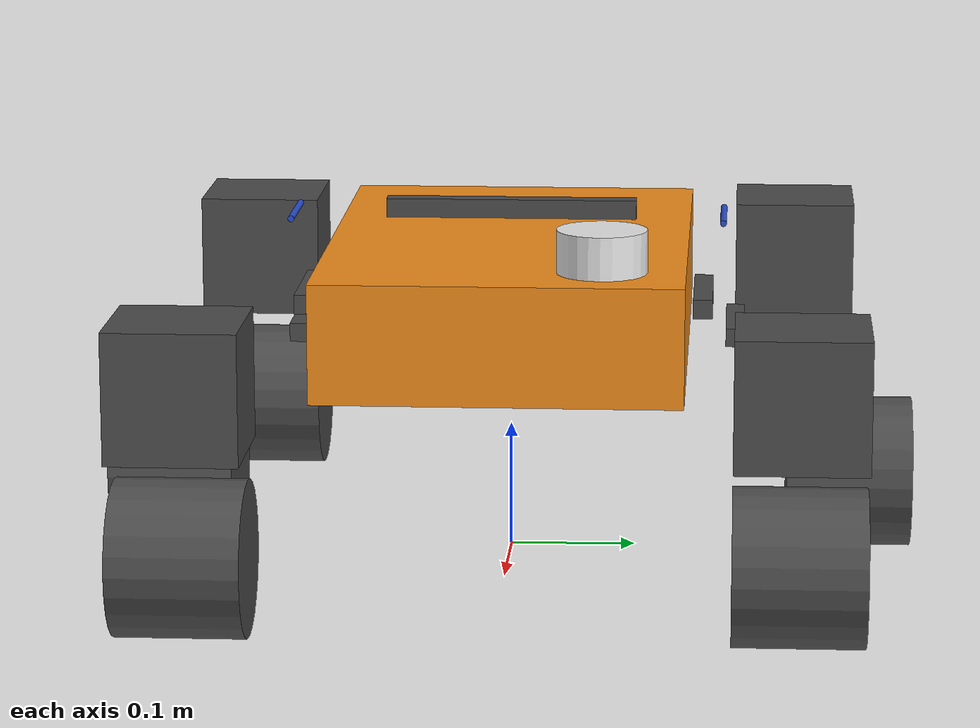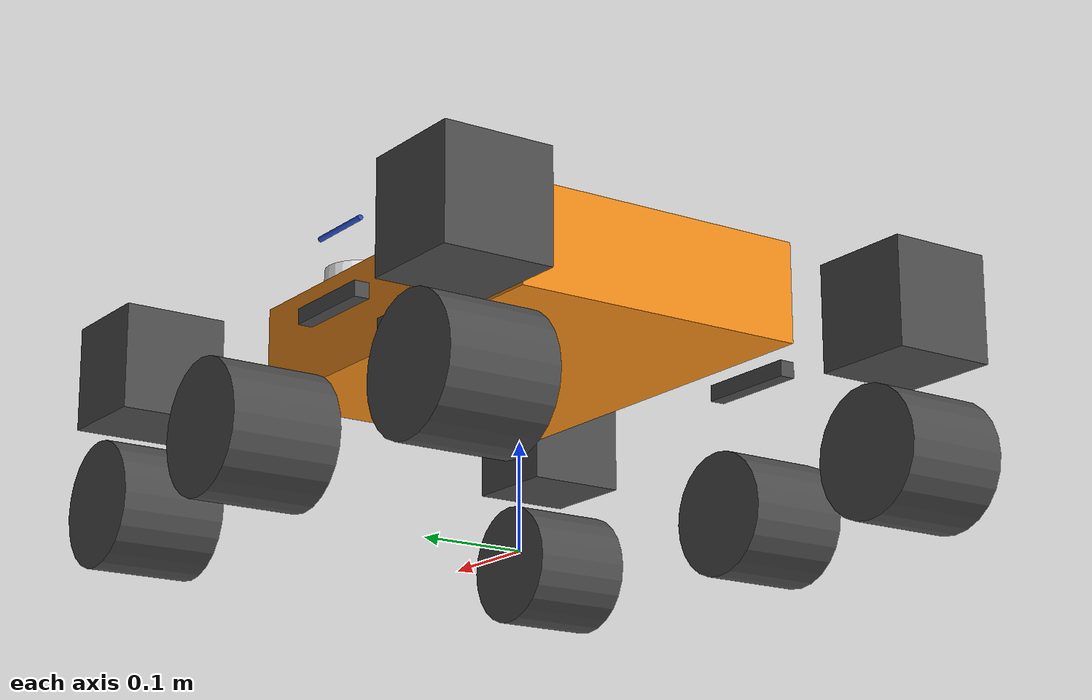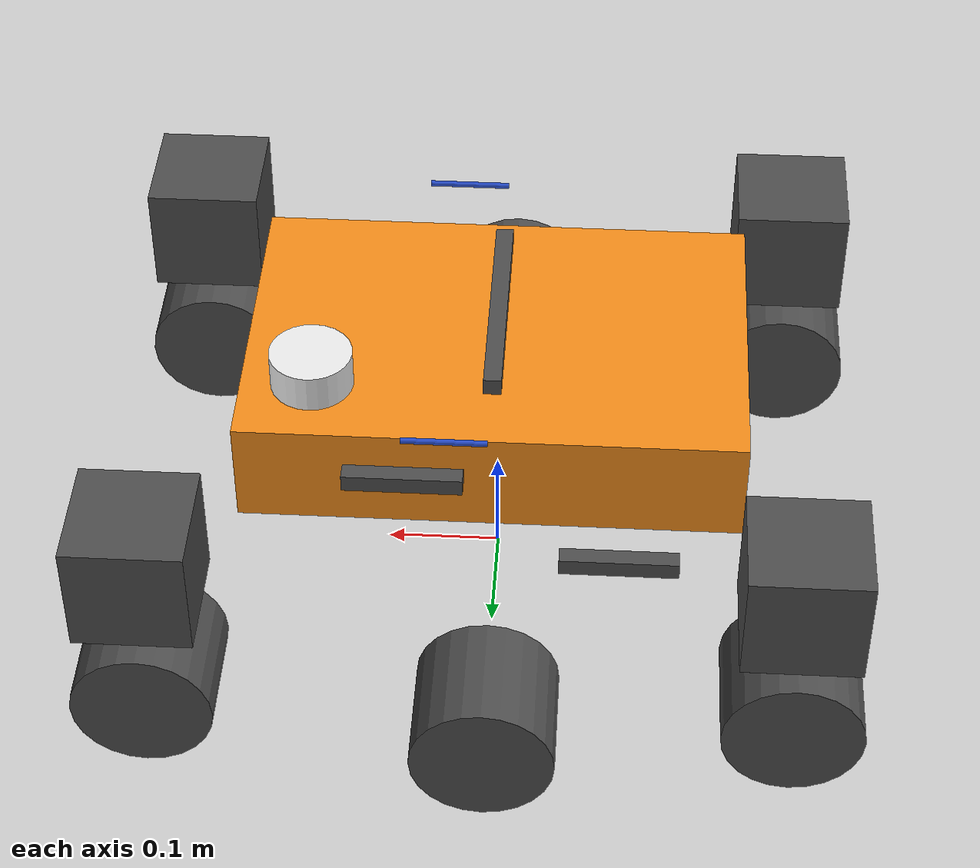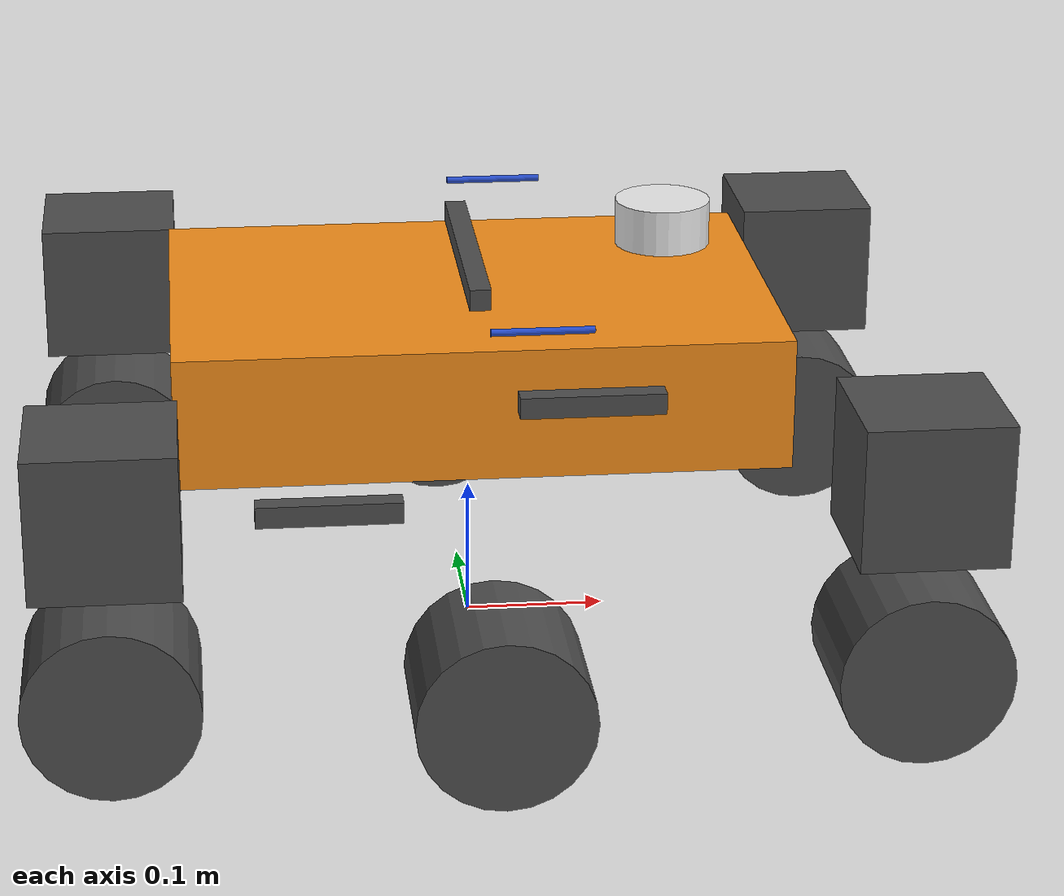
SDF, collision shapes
<?xml version='1.0'?>
<sdf version='1.6'>
<model name='sawppy_ardupilot'>
    <pose>0 0 0.21 0 0 0</pose>

    <include>
        <pose>0 0 0 0 0 0</pose>
        <uri>model://sawppy</uri>
    </include>

    <plugin name="ardupilot_plugin" filename="libArduPilotPlugin.so">
        <!-- Port settings -->
        <fdm_addr>127.0.0.1</fdm_addr>
        <fdm_port_in>9002</fdm_port_in>
        <connectionTimeoutMaxCount>5</connectionTimeoutMaxCount>

        <modelXYZToAirplaneXForwardZDown>0 0 0 3.141593 0 0</modelXYZToAirplaneXForwardZDown>
        <gazeboXYZToNED>0 0 0 3.141593 0 0</gazeboXYZToNED>

        <!-- Sensors -->
        <imuName>sawppy_ardupilot::imu_link::imu_sensor</imuName>

        <!-- Control / channels -->

        <!-- Wheel servos -->

        <!--
            SERVO1_FUNCTION 94 (Script 1)
            SERVO1_MIN 1000
            SERVO1_MAX 2000
        -->
        <control channel="0">
            <jointName>sawppy_ardupilot::sawppy::front_left_wheel_joint</jointName>
            <useForce>1</useForce>
            <multiplier>12.5</multiplier>
            <offset>-0.5</offset>
            <type>VELOCITY</type>
            <p_gain>1</p_gain>
            <i_gain>0</i_gain>
            <d_gain>0</d_gain>
            <i_max>1</i_max>
            <i_min>0</i_min>
            <cmd_max>1.25</cmd_max>
            <cmd_min>-1.25</cmd_min>
        </control>

        <!--
            SERVO2_FUNCTION 95 (Script 2)
            SERVO2_MIN 1000
            SERVO2_MAX 2000
        -->
        <control channel="1">
            <jointName>sawppy_ardupilot::sawppy::front_right_wheel_joint</jointName>
            <useForce>1</useForce>
            <multiplier>12.5</multiplier>
            <offset>-0.5</offset>
            <type>VELOCITY</type>
            <p_gain>1</p_gain>
            <i_gain>0</i_gain>
            <d_gain>0</d_gain>
            <i_max>1</i_max>
            <i_min>0</i_min>
            <cmd_max>1.25</cmd_max>
            <cmd_min>-1.25</cmd_min>
        </control>

        <!--
            SERVO3_FUNCTION 96 (Script 3)
            SERVO3_MIN 1000
            SERVO3_MAX 2000
        -->
        <control channel="2">
            <jointName>sawppy_ardupilot::sawppy::mid_left_wheel_joint</jointName>
            <useForce>1</useForce>
            <multiplier>12.5</multiplier>
            <offset>-0.5</offset>
            <type>VELOCITY</type>
            <p_gain>1</p_gain>
            <i_gain>0</i_gain>
            <d_gain>0</d_gain>
            <i_max>1</i_max>
            <i_min>0</i_min>
            <cmd_max>1.25</cmd_max>
            <cmd_min>-1.25</cmd_min>
        </control>

        <!--
            SERVO4_FUNCTION 97 (Script 4)
            SERVO4_MIN 1000
            SERVO4_MAX 2000
        -->
        <control channel="3">
            <jointName>sawppy_ardupilot::sawppy::mid_right_wheel_joint</jointName>
            <useForce>1</useForce>
            <multiplier>12.5</multiplier>
            <offset>-0.5</offset>
            <type>VELOCITY</type>
            <p_gain>1</p_gain>
            <i_gain>0</i_gain>
            <d_gain>0</d_gain>
            <i_max>1</i_max>
            <i_min>0</i_min>
            <cmd_max>1.25</cmd_max>
            <cmd_min>-1.25</cmd_min>
        </control>

        <!--
            SERVO5_FUNCTION 98 (Script 5)
            SERVO5_MIN 1000
            SERVO5_MAX 2000
        -->
        <control channel="4">
            <jointName>sawppy_ardupilot::sawppy::back_left_wheel_joint</jointName>
            <useForce>1</useForce>
            <multiplier>12.5</multiplier>
            <offset>-0.5</offset>
            <type>VELOCITY</type>
            <p_gain>1</p_gain>
            <i_gain>0</i_gain>
            <d_gain>0</d_gain>
            <i_max>1</i_max>
            <i_min>0</i_min>
            <cmd_max>1.25</cmd_max>
            <cmd_min>-1.25</cmd_min>
        </control>

        <!--
            SERVO6_FUNCTION 99 (Script 6)
            SERVO6_MIN 1000
            SERVO6_MAX 2000
        -->
        <control channel="5">
            <jointName>sawppy_ardupilot::sawppy::back_right_wheel_joint</jointName>
            <useForce>1</useForce>
            <multiplier>12.5</multiplier>
            <offset>-0.5</offset>
            <type>VELOCITY</type>
            <p_gain>1</p_gain>
            <i_gain>0</i_gain>
            <d_gain>0</d_gain>
            <i_max>1</i_max>
            <i_min>0</i_min>
            <cmd_max>1.25</cmd_max>
            <cmd_min>-1.25</cmd_min>
        </control>

        <!-- Steer servos -->

        <!--
            SERVO7_FUNCTION 100 (Script 7)
            SERVO7_MIN 1000
            SERVO7_MAX 2000
        -->
        <control channel="6">
            <jointName>sawppy_ardupilot::sawppy::front_left_steer_joint</jointName>
            <useForce>1</useForce>
            <multiplier>6.283185</multiplier>
            <offset>-0.5</offset>
            <type>POSITION</type>
            <p_gain>1</p_gain>
            <i_gain>0</i_gain>
            <d_gain>0</d_gain>
            <i_max>1</i_max>
            <i_min>0</i_min>
            <cmd_max>3.141593</cmd_max>
            <cmd_min>-3.141593</cmd_min>
        </control>

        <!--
            SERVO8_FUNCTION 101 (Script 8)
            SERVO8_MIN 1000
            SERVO8_MAX 2000
        -->
        <control channel="7">
            <jointName>sawppy_ardupilot::sawppy::front_right_steer_joint</jointName>
            <useForce>1</useForce>
            <multiplier>6.283185</multiplier>
            <offset>-0.5</offset>
            <type>POSITION</type>
            <p_gain>1</p_gain>
            <i_gain>0</i_gain>
            <d_gain>0</d_gain>
            <i_max>1</i_max>
            <i_min>0</i_min>
            <cmd_max>3.141593</cmd_max>
            <cmd_min>-3.141593</cmd_min>
        </control>

        <!--
            SERVO9_FUNCTION 102 (Script 9)
            SERVO9_MIN 1000
            SERVO9_MAX 2000
        -->
        <control channel="8">
            <jointName>sawppy_ardupilot::sawppy::back_left_steer_joint</jointName>
            <useForce>1</useForce>
            <multiplier>6.283185</multiplier>
            <offset>-0.5</offset>
            <type>POSITION</type>
            <p_gain>1</p_gain>
            <i_gain>0</i_gain>
            <d_gain>0</d_gain>
            <i_max>1</i_max>
            <i_min>0</i_min>
            <cmd_max>3.141593</cmd_max>
            <cmd_min>-3.141593</cmd_min>
        </control>

        <!--
            SERVO10_FUNCTION 103 (Script 10)
            SERVO10_MIN 1000
            SERVO10_MAX 2000
        -->
        <control channel="9">
            <jointName>sawppy_ardupilot::sawppy::back_right_steer_joint</jointName>
            <useForce>1</useForce>
            <multiplier>6.283185</multiplier>
            <offset>-0.5</offset>
            <type>POSITION</type>
            <p_gain>1</p_gain>
            <i_gain>0</i_gain>
            <d_gain>0</d_gain>
            <i_max>1</i_max>
            <i_min>0</i_min>
            <cmd_max>3.141593</cmd_max>
            <cmd_min>-3.141593</cmd_min>
        </control>

    </plugin>

    <!-- NOTE: cannot find the sensor on the sawppy model?? -->
    <link name='imu_link'>
        <inertial>
            <mass>0.01</mass>
            <inertia>
                <ixx>1.66667E-07</ixx>
                <ixy>0</ixy>
                <ixz>0</ixz>
                <iyy>1.66667E-07</iyy>
                <iyz>0</iyz>
                <izz>1.66667E-07</izz>
            </inertia>
        </inertial>
        <sensor name="imu_sensor" type="imu">
            <pose>0 0 0 3.141593 0 0</pose>
            <always_on>1</always_on>
            <update_rate>1000.0</update_rate>
        </sensor>
    </link>

    <joint name='imu_joint' type='revolute'>
        <child>imu_link</child>
        <parent>sawppy_ardupilot::sawppy::base_link</parent>
        <axis>
            <xyz>0 0 1</xyz>
            <limit>
                <lower>0</lower>
                <upper>0</upper>
            </limit>
        </axis>
    </joint>
</model>
</sdf>

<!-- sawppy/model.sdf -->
<sdf version='1.7'>
  <model name='sawppy'>
    <pose>0 0 0.21 0 0 0</pose>
    <link name='base_link'>
      <inertial>
        <pose>0 0 0 0 0 0</pose>
        <mass>1.01</mass>
        <inertia>
          <ixx>0.00748967</ixx>
          <ixy>0</ixy>
          <ixz>0</ixz>
          <iyy>0.015773</iyy>
          <iyz>0</iyz>
          <izz>0.021821</izz>
        </inertia>
      </inertial>
      <collision name='base_link_collision'>
        <pose>0 0 0 0 -0 0</pose>
        <geometry>
          <box>
            <size>0.01 0.01 0.01</size>
          </box>
        </geometry>
        <surface>
          <contact>
            <ode/>
          </contact>
          <friction>
            <ode/>
          </friction>
        </surface>
      </collision>
      <collision name='base_link_fixed_joint_lump__body_box_link_collision_1'>
        <pose>0 0 0 0 -0 0</pose>
        <geometry>
          <box>
            <size>0.425 0.285 0.093</size>
          </box>
        </geometry>
        <surface>
          <contact>
            <ode/>
          </contact>
          <friction>
            <ode/>
          </friction>
        </surface>
      </collision>
      <visual name='base_link_visual'>
        <pose>0 0 0 0 -0 0</pose>
        <geometry>
          <box>
            <size>0.01 0.01 0.01</size>
          </box>
        </geometry>
        <material>
          <script>
            <name>Gazebo/Orange</name>
            <uri>file://media/materials/scripts/gazebo.material</uri>
          </script>
        </material>
      </visual>
      <visual name='base_link_fixed_joint_lump__body_box_link_visual_1'>
        <pose>0 0 0 0 -0 0</pose>
        <geometry>
          <mesh>
            <scale>1 1 1</scale>
            <uri>model://sawppy/meshes/bases/body_box.stl</uri>
          </mesh>
        </geometry>
        <material>
          <script>
            <name>Gazebo/DarkGray</name>
            <uri>file://media/materials/scripts/gazebo.material</uri>
          </script>
        </material>
      </visual>
      <velocity_decay/>
      <gravity>1</gravity>
      <velocity_decay/>
    </link>
    <joint name='diff_brace_joint' type='revolute'>
      <pose relative_to='base_link'>0 0 0.0681 0 -0 0</pose>
      <parent>base_link</parent>
      <child>diff_brace_link</child>
      <axis>
        <initial_position>0</initial_position>
        <xyz>0 0 1</xyz>
        <limit>
          <lower>-0.785398</lower>
          <upper>0.785398</upper>
          <effort>100</effort>
          <velocity>100</velocity>
        </limit>
        <dynamics>
          <spring_reference>0</spring_reference>
          <spring_stiffness>0</spring_stiffness>
          <damping>0.1</damping>
          <friction>0.1</friction>
        </dynamics>
      </axis>
      <physics>
        <provide_feedback>1</provide_feedback>
        <ode>
          <implicit_spring_damper>1</implicit_spring_damper>
          <cfm_damping>1</cfm_damping>
          <limit>
            <cfm>0</cfm>
            <erp>0.2</erp>
          </limit>
          <provide_feedback>1</provide_feedback>
        </ode>
      </physics>
    </joint>
    <link name='diff_brace_link'>
      <pose relative_to='diff_brace_joint'>0 0 0 0 -0 0</pose>
      <inertial>
        <pose>0 0 0 0 -0 1.5708</pose>
        <mass>0.1</mass>
        <inertia>
          <ixx>3.75e-06</ixx>
          <ixy>0</ixy>
          <ixz>0</ixz>
          <iyy>0.000335208</iyy>
          <iyz>0</iyz>
          <izz>0.000335208</izz>
        </inertia>
      </inertial>
      <collision name='diff_brace_link_collision'>
        <pose>0 0 0 0 -0 1.5708</pose>
        <geometry>
          <box>
            <size>0.2 0.015 0.015</size>
          </box>
        </geometry>
        <surface>
          <contact>
            <ode/>
          </contact>
          <friction>
            <ode/>
          </friction>
        </surface>
      </collision>
      <visual name='diff_brace_link_visual'>
        <pose>0 0 0 0 -0 0</pose>
        <geometry>
          <mesh>
            <scale>1 1 1</scale>
            <uri>model://sawppy/meshes/bases/differential.stl</uri>
          </mesh>
        </geometry>
        <material>
          <script>
            <name>Gazebo/DarkGray</name>
            <uri>file://media/materials/scripts/gazebo.material</uri>
          </script>
        </material>
      </visual>
      <gravity>1</gravity>
      <velocity_decay/>
    </link>
    <joint name='laser_joint' type='fixed'>
      <pose relative_to='base_link'>0.152 0.078 0.05 0 -0 0</pose>
      <parent>base_link</parent>
      <child>laser</child>
      <axis>
        <dynamics>
          <spring_reference>0</spring_reference>
          <spring_stiffness>0</spring_stiffness>
        </dynamics>
        <xyz>0 0 1</xyz>
        <limit>
          <lower>-1e+16</lower>
          <upper>1e+16</upper>
        </limit>
      </axis>
      <physics>
        <ode>
          <limit>
            <cfm>0</cfm>
            <erp>0.2</erp>
          </limit>
        </ode>
      </physics>
    </joint>
    <link name='laser'>
      <pose relative_to='laser_joint'>0 0 0 0 -0 0</pose>
      <inertial>
        <pose>0 0 0 0 -0 0</pose>
        <mass>0.15</mass>
        <inertia>
          <ixx>9.09375e-05</ixx>
          <ixy>0</ixy>
          <ixz>0</ixz>
          <iyy>9.09375e-05</iyy>
          <iyz>0</iyz>
          <izz>9.1875e-05</izz>
        </inertia>
      </inertial>
      <collision name='laser_collision'>
        <pose>0 0 0 0 -0 0</pose>
        <geometry>
          <cylinder>
            <length>0.06</length>
            <radius>0.035</radius>
          </cylinder>
        </geometry>
        <surface>
          <contact>
            <ode/>
          </contact>
          <friction>
            <ode/>
          </friction>
        </surface>
      </collision>
      <visual name='laser_visual'>
        <pose>0 0 0 0 -0 0</pose>
        <geometry>
          <mesh>
            <scale>1 1 1</scale>
            <uri>model://sawppy/meshes/sensors/rplidar_a1_assembly_low.stl</uri>
          </mesh>
        </geometry>
        <material>
          <script>
            <name>Gazebo/White</name>
            <uri>file://media/materials/scripts/gazebo.material</uri>
          </script>
        </material>
      </visual>
      <gravity>1</gravity>
      <velocity_decay/>
    </link>
    <joint name='left_rocker_joint' type='revolute'>
      <pose relative_to='base_link'>0.071 0.155 0.0118 0 -0 0</pose>
      <parent>base_link</parent>
      <child>left_rocker_link</child>
      <axis>
        <initial_position>0</initial_position>
        <xyz>0 1 0</xyz>
        <limit>
          <lower>-1e+16</lower>
          <upper>1e+16</upper>
        </limit>
        <dynamics>
          <spring_reference>0</spring_reference>
          <spring_stiffness>0</spring_stiffness>
          <damping>0.1</damping>
          <friction>0.1</friction>
        </dynamics>
      </axis>
      <physics>
        <provide_feedback>1</provide_feedback>
        <ode>
          <implicit_spring_damper>1</implicit_spring_damper>
          <cfm_damping>1</cfm_damping>
          <limit>
            <cfm>0</cfm>
            <erp>0.2</erp>
          </limit>
          <provide_feedback>1</provide_feedback>
        </ode>
      </physics>
    </joint>
    <link name='left_rocker_link'>
      <pose relative_to='left_rocker_joint'>0 0 0 0 -0 0</pose>
      <inertial>
        <pose>0 0 0 0 -0 0</pose>
        <mass>0.25</mass>
        <inertia>
          <ixx>9.375e-06</ixx>
          <ixy>0</ixy>
          <ixz>0</ixz>
          <iyy>0.000213021</iyy>
          <iyz>0</iyz>
          <izz>0.000213021</izz>
        </inertia>
      </inertial>
      <collision name='left_rocker_link_collision'>
        <pose>0 0 0 0 -0 0</pose>
        <geometry>
          <box>
            <size>0.1 0.015 0.015</size>
          </box>
        </geometry>
        <surface>
          <contact>
            <ode/>
          </contact>
          <friction>
            <ode/>
          </friction>
        </surface>
      </collision>
      <visual name='left_rocker_link_visual'>
        <pose>0 0 0 0 -0 0</pose>
        <geometry>
          <mesh>
            <scale>1 1 1</scale>
            <uri>model://sawppy/meshes/bases/left_rocker_asm.stl</uri>
          </mesh>
        </geometry>
        <material>
          <script>
            <name>Gazebo/DarkGray</name>
            <uri>file://media/materials/scripts/gazebo.material</uri>
          </script>
        </material>
      </visual>
      <gravity>1</gravity>
      <velocity_decay/>
    </link>
    <joint name='front_left_steer_joint' type='revolute'>
      <pose relative_to='left_rocker_link'>0.2116 0.075 -0.0279 0 -0 0</pose>
      <parent>left_rocker_link</parent>
      <child>front_left_steer_link</child>
      <axis>
        <initial_position>0</initial_position>
        <xyz>0 0 1</xyz>
        <limit>
          <lower>-1e+16</lower>
          <upper>1e+16</upper>
        </limit>
        <dynamics>
          <spring_reference>0</spring_reference>
          <spring_stiffness>0</spring_stiffness>
          <damping>0.1</damping>
          <friction>0.1</friction>
        </dynamics>
      </axis>
      <physics>
        <provide_feedback>1</provide_feedback>
        <ode>
          <limit>
            <cfm>0</cfm>
            <erp>0.2</erp>
          </limit>
          <provide_feedback>1</provide_feedback>
        </ode>
      </physics>
    </joint>
    <link name='front_left_steer_link'>
      <pose relative_to='front_left_steer_joint'>0 0 0 0 -0 0</pose>
      <inertial>
        <pose>0 0 0 0 -0 0</pose>
        <mass>0.25</mass>
        <inertia>
          <ixx>0.000416667</ixx>
          <ixy>0</ixy>
          <ixz>0</ixz>
          <iyy>0.000416667</iyy>
          <iyz>0</iyz>
          <izz>0.000416667</izz>
        </inertia>
      </inertial>
      <collision name='front_left_steer_link_collision'>
        <pose>0 0 0 0 -0 0</pose>
        <geometry>
          <box>
            <size>0.1 0.1 0.1</size>
          </box>
        </geometry>
        <surface>
          <contact>
            <ode/>
          </contact>
          <friction>
            <ode/>
          </friction>
        </surface>
      </collision>
      <visual name='front_left_steer_link_visual'>
        <pose>0 0 0 0 -0 0</pose>
        <geometry>
          <mesh>
            <scale>1 1 1</scale>
            <uri>model://sawppy/meshes/bases/front_left_steering_asm.stl</uri>
          </mesh>
        </geometry>
        <material>
          <script>
            <name>Gazebo/DarkGray</name>
            <uri>file://media/materials/scripts/gazebo.material</uri>
          </script>
        </material>
      </visual>
      <gravity>1</gravity>
      <velocity_decay/>
    </link>
    <joint name='front_left_wheel_joint' type='revolute'>
      <pose relative_to='front_left_steer_link'>0 0 -0.132 0 -0 0</pose>
      <parent>front_left_steer_link</parent>
      <child>front_left_wheel_link</child>
      <axis>
        <initial_position>0</initial_position>
        <xyz>0 1 0</xyz>
        <limit>
          <lower>-1e+16</lower>
          <upper>1e+16</upper>
        </limit>
        <dynamics>
          <spring_reference>0</spring_reference>
          <spring_stiffness>0</spring_stiffness>
          <damping>0.01</damping>
          <friction>0.01</friction>
        </dynamics>
      </axis>
      <physics>
        <provide_feedback>1</provide_feedback>
        <ode>
          <limit>
            <cfm>0</cfm>
            <erp>0.2</erp>
          </limit>
          <provide_feedback>1</provide_feedback>
        </ode>
      </physics>
    </joint>
    <link name='front_left_wheel_link'>
      <pose relative_to='front_left_wheel_joint'>0 0 0 0 -0 0</pose>
      <inertial>
        <pose>0 0 0 0 -0 0</pose>
        <mass>0.25</mass>
        <inertia>
          <ixx>0.000433333</ixx>
          <ixy>0</ixy>
          <ixz>0</ixz>
          <iyy>0.000433333</iyy>
          <iyz>0</iyz>
          <izz>0.00045</izz>
        </inertia>
      </inertial>
      <collision name='front_left_wheel_link_collision'>
        <pose>0 0 0 1.5708 -0 0</pose>
        <geometry>
          <cylinder>
            <length>0.1</length>
            <radius>0.06</radius>
          </cylinder>
        </geometry>
        <surface>
          <contact>
            <ode/>
          </contact>
          <friction>
            <ode/>
          </friction>
        </surface>
      </collision>
      <visual name='front_left_wheel_link_visual'>
        <pose>0 0 0 1.5708 -0 0</pose>
        <geometry>
          <mesh>
            <scale>1 1 1</scale>
            <uri>model://sawppy/meshes/wheels/wheel_asm.stl</uri>
          </mesh>
        </geometry>
        <material>
          <script>
            <name>Gazebo/DarkGray</name>
            <uri>file://media/materials/scripts/gazebo.material</uri>
          </script>
        </material>
      </visual>
      <gravity>1</gravity>
      <velocity_decay/>
    </link>
    <joint name='left_bogie_joint' type='revolute'>
      <pose relative_to='left_rocker_link'>-0.181 0.025 -0.062 0 -0 0</pose>
      <parent>left_rocker_link</parent>
      <child>left_bogie_link</child>
      <axis>
        <initial_position>0</initial_position>
        <xyz>0 1 0</xyz>
        <limit>
          <lower>-0.785398</lower>
          <upper>0.785398</upper>
          <effort>100</effort>
          <velocity>100</velocity>
        </limit>
        <dynamics>
          <spring_reference>0</spring_reference>
          <spring_stiffness>0</spring_stiffness>
          <damping>0.1</damping>
          <friction>0.1</friction>
        </dynamics>
      </axis>
      <physics>
        <provide_feedback>1</provide_feedback>
        <ode>
          <implicit_spring_damper>1</implicit_spring_damper>
          <cfm_damping>1</cfm_damping>
          <limit>
            <cfm>0</cfm>
            <erp>0.2</erp>
          </limit>
          <provide_feedback>1</provide_feedback>
        </ode>
      </physics>
    </joint>
    <link name='left_bogie_link'>
      <pose relative_to='left_bogie_joint'>0 0 0 0 -0 0</pose>
      <inertial>
        <pose>0 0 0 0 -0 0</pose>
        <mass>0.25</mass>
        <inertia>
          <ixx>9.375e-06</ixx>
          <ixy>0</ixy>
          <ixz>0</ixz>
          <iyy>0.000213021</iyy>
          <iyz>0</iyz>
          <izz>0.000213021</izz>
        </inertia>
      </inertial>
      <collision name='left_bogie_link_collision'>
        <pose>0 0 0 0 -0 0</pose>
        <geometry>
          <box>
            <size>0.1 0.015 0.015</size>
          </box>
        </geometry>
        <surface>
          <contact>
            <ode/>
          </contact>
          <friction>
            <ode/>
          </friction>
        </surface>
      </collision>
      <visual name='left_bogie_link_visual'>
        <pose>0 0 0 0 -0 0</pose>
        <geometry>
          <mesh>
            <scale>1 1 1</scale>
            <uri>model://sawppy/meshes/bases/left_bogie_asm.stl</uri>
          </mesh>
        </geometry>
        <material>
          <script>
            <name>Gazebo/DarkGray</name>
            <uri>file://media/materials/scripts/gazebo.material</uri>
          </script>
        </material>
      </visual>
      <gravity>1</gravity>
      <velocity_decay/>
    </link>
    <joint name='back_left_steer_joint' type='revolute'>
      <pose relative_to='left_bogie_link'>-0.149 0.05 0.0338 0 -0 0</pose>
      <parent>left_bogie_link</parent>
      <child>back_left_steer_link</child>
      <axis>
        <initial_position>0</initial_position>
        <xyz>0 0 1</xyz>
        <limit>
          <lower>-1e+16</lower>
          <upper>1e+16</upper>
        </limit>
        <dynamics>
          <spring_reference>0</spring_reference>
          <spring_stiffness>0</spring_stiffness>
          <damping>0.1</damping>
          <friction>0.1</friction>
        </dynamics>
      </axis>
      <physics>
        <provide_feedback>1</provide_feedback>
        <ode>
          <limit>
            <cfm>0</cfm>
            <erp>0.2</erp>
          </limit>
          <provide_feedback>1</provide_feedback>
        </ode>
      </physics>
    </joint>
    <link name='back_left_steer_link'>
      <pose relative_to='back_left_steer_joint'>0 0 0 0 -0 0</pose>
      <inertial>
        <pose>0 0 0 0 -0 0</pose>
        <mass>0.25</mass>
        <inertia>
          <ixx>0.000416667</ixx>
          <ixy>0</ixy>
          <ixz>0</ixz>
          <iyy>0.000416667</iyy>
          <iyz>0</iyz>
          <izz>0.000416667</izz>
        </inertia>
      </inertial>
      <collision name='back_left_steer_link_collision'>
        <pose>0 0 0 0 -0 0</pose>
        <geometry>
          <box>
            <size>0.1 0.1 0.1</size>
          </box>
        </geometry>
        <surface>
          <contact>
            <ode/>
          </contact>
          <friction>
            <ode/>
          </friction>
        </surface>
      </collision>
      <visual name='back_left_steer_link_visual'>
        <pose>0 0 0 0 -0 0</pose>
        <geometry>
          <mesh>
            <scale>1 1 1</scale>
            <uri>model://sawppy/meshes/bases/back_left_steering_asm.stl</uri>
          </mesh>
        </geometry>
        <material>
          <script>
            <name>Gazebo/DarkGray</name>
            <uri>file://media/materials/scripts/gazebo.material</uri>
          </script>
        </material>
      </visual>
      <gravity>1</gravity>
      <velocity_decay/>
    </link>
    <joint name='back_left_wheel_joint' type='revolute'>
      <pose relative_to='back_left_steer_link'>0 0 -0.132 0 -0 0</pose>
      <parent>back_left_steer_link</parent>
      <child>back_left_wheel_link</child>
      <axis>
        <initial_position>0</initial_position>
        <xyz>0 1 0</xyz>
        <limit>
          <lower>-1e+16</lower>
          <upper>1e+16</upper>
        </limit>
        <dynamics>
          <spring_reference>0</spring_reference>
          <spring_stiffness>0</spring_stiffness>
          <damping>0.01</damping>
          <friction>0.01</friction>
        </dynamics>
      </axis>
      <physics>
        <provide_feedback>1</provide_feedback>
        <ode>
          <limit>
            <cfm>0</cfm>
            <erp>0.2</erp>
          </limit>
          <provide_feedback>1</provide_feedback>
        </ode>
      </physics>
    </joint>
    <link name='back_left_wheel_link'>
      <pose relative_to='back_left_wheel_joint'>0 0 0 0 -0 0</pose>
      <inertial>
        <pose>0 0 0 0 -0 0</pose>
        <mass>0.25</mass>
        <inertia>
          <ixx>0.000433333</ixx>
          <ixy>0</ixy>
          <ixz>0</ixz>
          <iyy>0.000433333</iyy>
          <iyz>0</iyz>
          <izz>0.00045</izz>
        </inertia>
      </inertial>
      <collision name='back_left_wheel_link_collision'>
        <pose>0 0 0 1.5708 -0 0</pose>
        <geometry>
          <cylinder>
            <length>0.1</length>
            <radius>0.06</radius>
          </cylinder>
        </geometry>
        <surface>
          <contact>
            <ode/>
          </contact>
          <friction>
            <ode/>
          </friction>
        </surface>
      </collision>
      <visual name='back_left_wheel_link_visual'>
        <pose>0 0 0 1.5708 -0 0</pose>
        <geometry>
          <mesh>
            <scale>1 1 1</scale>
            <uri>model://sawppy/meshes/wheels/wheel_asm.stl</uri>
          </mesh>
        </geometry>
        <material>
          <script>
            <name>Gazebo/DarkGray</name>
            <uri>file://media/materials/scripts/gazebo.material</uri>
          </script>
        </material>
      </visual>
      <gravity>1</gravity>
      <velocity_decay/>
    </link>
    <joint name='mid_left_wheel_joint' type='revolute'>
      <pose relative_to='left_bogie_link'>0.1063 0.0929 -0.0959 0 -0 0</pose>
      <parent>left_bogie_link</parent>
      <child>mid_left_wheel_link</child>
      <axis>
        <initial_position>0</initial_position>
        <xyz>0 1 0</xyz>
        <limit>
          <lower>-1e+16</lower>
          <upper>1e+16</upper>
        </limit>
        <dynamics>
          <spring_reference>0</spring_reference>
          <spring_stiffness>0</spring_stiffness>
          <damping>0.01</damping>
          <friction>0.01</friction>
        </dynamics>
      </axis>
      <physics>
        <provide_feedback>1</provide_feedback>
        <ode>
          <limit>
            <cfm>0</cfm>
            <erp>0.2</erp>
          </limit>
          <provide_feedback>1</provide_feedback>
        </ode>
      </physics>
    </joint>
    <link name='mid_left_wheel_link'>
      <pose relative_to='mid_left_wheel_joint'>0 0 0 0 -0 0</pose>
      <inertial>
        <pose>0 0 0 0 -0 0</pose>
        <mass>0.25</mass>
        <inertia>
          <ixx>0.000433333</ixx>
          <ixy>0</ixy>
          <ixz>0</ixz>
          <iyy>0.000433333</iyy>
          <iyz>0</iyz>
          <izz>0.00045</izz>
        </inertia>
      </inertial>
      <collision name='mid_left_wheel_link_collision'>
        <pose>0 0 0 1.5708 -0 0</pose>
        <geometry>
          <cylinder>
            <length>0.1</length>
            <radius>0.06</radius>
          </cylinder>
        </geometry>
        <surface>
          <contact>
            <ode/>
          </contact>
          <friction>
            <ode/>
          </friction>
        </surface>
      </collision>
      <visual name='mid_left_wheel_link_visual'>
        <pose>0 0 0 1.5708 -0 0</pose>
        <geometry>
          <mesh>
            <scale>1 1 1</scale>
            <uri>model://sawppy/meshes/wheels/wheel_asm.stl</uri>
          </mesh>
        </geometry>
        <material>
          <script>
            <name>Gazebo/DarkGray</name>
            <uri>file://media/materials/scripts/gazebo.material</uri>
          </script>
        </material>
      </visual>
      <gravity>1</gravity>
      <velocity_decay/>
    </link>
    <joint name='right_rocker_joint' type='revolute'>
      <pose relative_to='base_link'>0.071 -0.155 0.0118 0 -0 0</pose>
      <parent>base_link</parent>
      <child>right_rocker_link</child>
      <axis>
        <initial_position>0</initial_position>
        <xyz>0 1 0</xyz>
        <limit>
          <lower>-1e+16</lower>
          <upper>1e+16</upper>
        </limit>
        <dynamics>
          <spring_reference>0</spring_reference>
          <spring_stiffness>0</spring_stiffness>
          <damping>0.1</damping>
          <friction>0.1</friction>
        </dynamics>
      </axis>
      <physics>
        <provide_feedback>1</provide_feedback>
        <ode>
          <implicit_spring_damper>1</implicit_spring_damper>
          <cfm_damping>1</cfm_damping>
          <limit>
            <cfm>0</cfm>
            <erp>0.2</erp>
          </limit>
          <provide_feedback>1</provide_feedback>
        </ode>
      </physics>
    </joint>
    <link name='right_rocker_link'>
      <pose relative_to='right_rocker_joint'>0 0 0 0 -0 0</pose>
      <inertial>
        <pose>0 0 0 0 -0 0</pose>
        <mass>0.25</mass>
        <inertia>
          <ixx>9.375e-06</ixx>
          <ixy>0</ixy>
          <ixz>0</ixz>
          <iyy>0.000213021</iyy>
          <iyz>0</iyz>
          <izz>0.000213021</izz>
        </inertia>
      </inertial>
      <collision name='right_rocker_link_collision'>
        <pose>0 0 0 0 -0 0</pose>
        <geometry>
          <box>
            <size>0.1 0.015 0.015</size>
          </box>
        </geometry>
        <surface>
          <contact>
            <ode/>
          </contact>
          <friction>
            <ode/>
          </friction>
        </surface>
      </collision>
      <visual name='right_rocker_link_visual'>
        <pose>0 0 0 0 -0 0</pose>
        <geometry>
          <mesh>
            <scale>1 1 1</scale>
            <uri>model://sawppy/meshes/bases/right_rocker_asm.stl</uri>
          </mesh>
        </geometry>
        <material>
          <script>
            <name>Gazebo/DarkGray</name>
            <uri>file://media/materials/scripts/gazebo.material</uri>
          </script>
        </material>
      </visual>
      <gravity>1</gravity>
      <velocity_decay/>
    </link>
    <joint name='front_right_steer_joint' type='revolute'>
      <pose relative_to='right_rocker_link'>0.2116 -0.075 -0.0279 0 -0 0</pose>
      <parent>right_rocker_link</parent>
      <child>front_right_steer_link</child>
      <axis>
        <initial_position>0</initial_position>
        <xyz>0 0 1</xyz>
        <limit>
          <lower>-1e+16</lower>
          <upper>1e+16</upper>
        </limit>
        <dynamics>
          <spring_reference>0</spring_reference>
          <spring_stiffness>0</spring_stiffness>
          <damping>0.1</damping>
          <friction>0.1</friction>
        </dynamics>
      </axis>
      <physics>
        <provide_feedback>1</provide_feedback>
        <ode>
          <limit>
            <cfm>0</cfm>
            <erp>0.2</erp>
          </limit>
          <provide_feedback>1</provide_feedback>
        </ode>
      </physics>
    </joint>
    <link name='front_right_steer_link'>
      <pose relative_to='front_right_steer_joint'>0 0 0 0 -0 0</pose>
      <inertial>
        <pose>0 0 0 0 -0 0</pose>
        <mass>0.25</mass>
        <inertia>
          <ixx>0.000416667</ixx>
          <ixy>0</ixy>
          <ixz>0</ixz>
          <iyy>0.000416667</iyy>
          <iyz>0</iyz>
          <izz>0.000416667</izz>
        </inertia>
      </inertial>
      <collision name='front_right_steer_link_collision'>
        <pose>0 0 0 0 -0 0</pose>
        <geometry>
          <box>
            <size>0.1 0.1 0.1</size>
          </box>
        </geometry>
        <surface>
          <contact>
            <ode/>
          </contact>
          <friction>
            <ode/>
          </friction>
        </surface>
      </collision>
      <visual name='front_right_steer_link_visual'>
        <pose>0 0 0 0 -0 0</pose>
        <geometry>
          <mesh>
            <scale>1 1 1</scale>
            <uri>model://sawppy/meshes/bases/front_right_steering_asm.stl</uri>
          </mesh>
        </geometry>
        <material>
          <script>
            <name>Gazebo/DarkGray</name>
            <uri>file://media/materials/scripts/gazebo.material</uri>
          </script>
        </material>
      </visual>
      <gravity>1</gravity>
      <velocity_decay/>
    </link>
    <joint name='front_right_wheel_joint' type='revolute'>
      <pose relative_to='front_right_steer_link'>0 0 -0.132 0 -0 0</pose>
      <parent>front_right_steer_link</parent>
      <child>front_right_wheel_link</child>
      <axis>
        <initial_position>0</initial_position>
        <xyz>0 1 0</xyz>
        <limit>
          <lower>-1e+16</lower>
          <upper>1e+16</upper>
        </limit>
        <dynamics>
          <spring_reference>0</spring_reference>
          <spring_stiffness>0</spring_stiffness>
          <damping>0.01</damping>
          <friction>0.01</friction>
        </dynamics>
      </axis>
      <physics>
        <provide_feedback>1</provide_feedback>
        <ode>
          <limit>
            <cfm>0</cfm>
            <erp>0.2</erp>
          </limit>
          <provide_feedback>1</provide_feedback>
        </ode>
      </physics>
    </joint>
    <link name='front_right_wheel_link'>
      <pose relative_to='front_right_wheel_joint'>0 0 0 0 -0 0</pose>
      <inertial>
        <pose>0 0 0 0 -0 0</pose>
        <mass>0.25</mass>
        <inertia>
          <ixx>0.000433333</ixx>
          <ixy>0</ixy>
          <ixz>0</ixz>
          <iyy>0.000433333</iyy>
          <iyz>0</iyz>
          <izz>0.00045</izz>
        </inertia>
      </inertial>
      <collision name='front_right_wheel_link_collision'>
        <pose>0 0 0 -1.5708 0 0</pose>
        <geometry>
          <cylinder>
            <length>0.1</length>
            <radius>0.06</radius>
          </cylinder>
        </geometry>
        <surface>
          <contact>
            <ode/>
          </contact>
          <friction>
            <ode/>
          </friction>
        </surface>
      </collision>
      <visual name='front_right_wheel_link_visual'>
        <pose>0 0 0 -1.5708 0 0</pose>
        <geometry>
          <mesh>
            <scale>1 1 1</scale>
            <uri>model://sawppy/meshes/wheels/wheel_asm.stl</uri>
          </mesh>
        </geometry>
        <material>
          <script>
            <name>Gazebo/DarkGray</name>
            <uri>file://media/materials/scripts/gazebo.material</uri>
          </script>
        </material>
      </visual>
      <gravity>1</gravity>
      <velocity_decay/>
    </link>
    <joint name='right_bogie_joint' type='revolute'>
      <pose relative_to='right_rocker_link'>-0.181 -0.025 -0.062 0 -0 0</pose>
      <parent>right_rocker_link</parent>
      <child>right_bogie_link</child>
      <axis>
        <initial_position>0</initial_position>
        <xyz>0 1 0</xyz>
        <limit>
          <lower>-0.785398</lower>
          <upper>0.785398</upper>
          <effort>100</effort>
          <velocity>100</velocity>
        </limit>
        <dynamics>
          <spring_reference>0</spring_reference>
          <spring_stiffness>0</spring_stiffness>
          <damping>0.1</damping>
          <friction>0.1</friction>
        </dynamics>
      </axis>
      <physics>
        <provide_feedback>1</provide_feedback>
        <ode>
          <implicit_spring_damper>1</implicit_spring_damper>
          <cfm_damping>1</cfm_damping>
          <limit>
            <cfm>0</cfm>
            <erp>0.2</erp>
          </limit>
          <provide_feedback>1</provide_feedback>
        </ode>
      </physics>
    </joint>
    <link name='right_bogie_link'>
      <pose relative_to='right_bogie_joint'>0 0 0 0 -0 0</pose>
      <inertial>
        <pose>0 0 0 0 -0 0</pose>
        <mass>0.25</mass>
        <inertia>
          <ixx>9.375e-06</ixx>
          <ixy>0</ixy>
          <ixz>0</ixz>
          <iyy>0.000213021</iyy>
          <iyz>0</iyz>
          <izz>0.000213021</izz>
        </inertia>
      </inertial>
      <collision name='right_bogie_link_collision'>
        <pose>0 0 0 0 -0 0</pose>
        <geometry>
          <box>
            <size>0.1 0.015 0.015</size>
          </box>
        </geometry>
        <surface>
          <contact>
            <ode/>
          </contact>
          <friction>
            <ode/>
          </friction>
        </surface>
      </collision>
      <visual name='right_bogie_link_visual'>
        <pose>0 0 0 0 -0 0</pose>
        <geometry>
          <mesh>
            <scale>1 1 1</scale>
            <uri>model://sawppy/meshes/bases/right_bogie_asm.stl</uri>
          </mesh>
        </geometry>
        <material>
          <script>
            <name>Gazebo/DarkGray</name>
            <uri>file://media/materials/scripts/gazebo.material</uri>
          </script>
        </material>
      </visual>
      <gravity>1</gravity>
      <velocity_decay/>
    </link>
    <joint name='back_right_steer_joint' type='revolute'>
      <pose relative_to='right_bogie_link'>-0.149 -0.05 0.0338 0 -0 0</pose>
      <parent>right_bogie_link</parent>
      <child>back_right_steer_link</child>
      <axis>
        <initial_position>0</initial_position>
        <xyz>0 0 1</xyz>
        <limit>
          <lower>-1e+16</lower>
          <upper>1e+16</upper>
        </limit>
        <dynamics>
          <spring_reference>0</spring_reference>
          <spring_stiffness>0</spring_stiffness>
          <damping>0.1</damping>
          <friction>0.1</friction>
        </dynamics>
      </axis>
      <physics>
        <provide_feedback>1</provide_feedback>
        <ode>
          <limit>
            <cfm>0</cfm>
            <erp>0.2</erp>
          </limit>
          <provide_feedback>1</provide_feedback>
        </ode>
      </physics>
    </joint>
    <link name='back_right_steer_link'>
      <pose relative_to='back_right_steer_joint'>0 0 0 0 -0 0</pose>
      <inertial>
        <pose>0 0 0 0 -0 0</pose>
        <mass>0.25</mass>
        <inertia>
          <ixx>0.000416667</ixx>
          <ixy>0</ixy>
          <ixz>0</ixz>
          <iyy>0.000416667</iyy>
          <iyz>0</iyz>
          <izz>0.000416667</izz>
        </inertia>
      </inertial>
      <collision name='back_right_steer_link_collision'>
        <pose>0 0 0 0 -0 0</pose>
        <geometry>
          <box>
            <size>0.1 0.1 0.1</size>
          </box>
        </geometry>
        <surface>
          <contact>
            <ode/>
          </contact>
          <friction>
            <ode/>
          </friction>
        </surface>
      </collision>
      <visual name='back_right_steer_link_visual'>
        <pose>0 0 0 0 -0 0</pose>
        <geometry>
          <mesh>
            <scale>1 1 1</scale>
            <uri>model://sawppy/meshes/bases/back_right_steering_asm.stl</uri>
          </mesh>
        </geometry>
        <material>
          <script>
            <name>Gazebo/DarkGray</name>
            <uri>file://media/materials/scripts/gazebo.material</uri>
          </script>
        </material>
      </visual>
      <gravity>1</gravity>
      <velocity_decay/>
    </link>
    <joint name='back_right_wheel_joint' type='revolute'>
      <pose relative_to='back_right_steer_link'>0 0 -0.132 0 -0 0</pose>
      <parent>back_right_steer_link</parent>
      <child>back_right_wheel_link</child>
      <axis>
        <initial_position>0</initial_position>
        <xyz>0 1 0</xyz>
        <limit>
          <lower>-1e+16</lower>
          <upper>1e+16</upper>
        </limit>
        <dynamics>
          <spring_reference>0</spring_reference>
          <spring_stiffness>0</spring_stiffness>
          <damping>0.01</damping>
          <friction>0.01</friction>
        </dynamics>
      </axis>
      <physics>
        <provide_feedback>1</provide_feedback>
        <ode>
          <limit>
            <cfm>0</cfm>
            <erp>0.2</erp>
          </limit>
          <provide_feedback>1</provide_feedback>
        </ode>
      </physics>
    </joint>
    <link name='back_right_wheel_link'>
      <pose relative_to='back_right_wheel_joint'>0 0 0 0 -0 0</pose>
      <inertial>
        <pose>0 0 0 0 -0 0</pose>
        <mass>0.25</mass>
        <inertia>
          <ixx>0.000433333</ixx>
          <ixy>0</ixy>
          <ixz>0</ixz>
          <iyy>0.000433333</iyy>
          <iyz>0</iyz>
          <izz>0.00045</izz>
        </inertia>
      </inertial>
      <collision name='back_right_wheel_link_collision'>
        <pose>0 0 0 -1.5708 0 0</pose>
        <geometry>
          <cylinder>
            <length>0.1</length>
            <radius>0.06</radius>
          </cylinder>
        </geometry>
        <surface>
          <contact>
            <ode/>
          </contact>
          <friction>
            <ode/>
          </friction>
        </surface>
      </collision>
      <visual name='back_right_wheel_link_visual'>
        <pose>0 0 0 -1.5708 0 0</pose>
        <geometry>
          <mesh>
            <scale>1 1 1</scale>
            <uri>model://sawppy/meshes/wheels/wheel_asm.stl</uri>
          </mesh>
        </geometry>
        <material>
          <script>
            <name>Gazebo/DarkGray</name>
            <uri>file://media/materials/scripts/gazebo.material</uri>
          </script>
        </material>
      </visual>
      <gravity>1</gravity>
      <velocity_decay/>
    </link>
    <joint name='mid_right_wheel_joint' type='revolute'>
      <pose relative_to='right_bogie_link'>0.1063 -0.0929 -0.0959 0 -0 0</pose>
      <parent>right_bogie_link</parent>
      <child>mid_right_wheel_link</child>
      <axis>
        <initial_position>0</initial_position>
        <xyz>0 1 0</xyz>
        <limit>
          <lower>-1e+16</lower>
          <upper>1e+16</upper>
        </limit>
        <dynamics>
          <spring_reference>0</spring_reference>
          <spring_stiffness>0</spring_stiffness>
          <damping>0.01</damping>
          <friction>0.01</friction>
        </dynamics>
      </axis>
      <physics>
        <provide_feedback>1</provide_feedback>
        <ode>
          <limit>
            <cfm>0</cfm>
            <erp>0.2</erp>
          </limit>
          <provide_feedback>1</provide_feedback>
        </ode>
      </physics>
    </joint>
    <link name='mid_right_wheel_link'>
      <pose relative_to='mid_right_wheel_joint'>0 0 0 0 -0 0</pose>
      <inertial>
        <pose>0 0 0 0 -0 0</pose>
        <mass>0.25</mass>
        <inertia>
          <ixx>0.000433333</ixx>
          <ixy>0</ixy>
          <ixz>0</ixz>
          <iyy>0.000433333</iyy>
          <iyz>0</iyz>
          <izz>0.00045</izz>
        </inertia>
      </inertial>
      <collision name='mid_right_wheel_link_collision'>
        <pose>0 0 0 -1.5708 0 0</pose>
        <geometry>
          <cylinder>
            <length>0.1</length>
            <radius>0.06</radius>
          </cylinder>
        </geometry>
        <surface>
          <contact>
            <ode/>
          </contact>
          <friction>
            <ode/>
          </friction>
        </surface>
      </collision>
      <visual name='mid_right_wheel_link_visual'>
        <pose>0 0 0 -1.5708 0 0</pose>
        <geometry>
          <mesh>
            <scale>1 1 1</scale>
            <uri>model://sawppy/meshes/wheels/wheel_asm.stl</uri>
          </mesh>
        </geometry>
        <material>
          <script>
            <name>Gazebo/DarkGray</name>
            <uri>file://media/materials/scripts/gazebo.material</uri>
          </script>
        </material>
      </visual>
      <gravity>1</gravity>
      <velocity_decay/>
    </link>
    <link name='left_turnbuckle_link'>
      <pose>0.035 0.17 0.07 0 -0 0</pose>
      <visual name='left_turnbuckle_visual'>
        <pose>0 0 0 0 -0 0</pose>
        <geometry>
          <mesh>
            <uri>model://curio/meshes/bases/turnbuckle.stl</uri>
          </mesh>
        </geometry>
        <material>
          <script>
            <name>Gazebo/Blue</name>
            <uri>__default__</uri>
          </script>
        </material>
      </visual>
      <collision name='left_turnbuckle_collision'>
        <pose>0 0 0 0 1.5708 0</pose>
        <geometry>
          <cylinder>
            <length>0.07</length>
            <radius>0.0025</radius>
          </cylinder>
        </geometry>
      </collision>
      <inertial>
        <mass>0.01</mass>
        <inertia>
          <ixx>0.0001</ixx>
          <ixy>0</ixy>
          <ixz>0</ixz>
          <iyy>0.0001</iyy>
          <iyz>0</iyz>
          <izz>0.0001</izz>
        </inertia>
      </inertial>
    </link>
    <joint name='back_left_turnbuckle_joint' type='ball'>
      <pose>-0.035 0 0 0 -0 0</pose>
      <parent>diff_brace_link</parent>
      <child>left_turnbuckle_link</child>
    </joint>
    <joint name='front_left_turnbuckle_joint' type='ball'>
      <pose>0.035 0 0 0 -0 0</pose>
      <parent>left_rocker_link</parent>
      <child>left_turnbuckle_link</child>
    </joint>
    <static>0</static>
    <link name='right_turnbuckle_link'>
      <pose>0.035 -0.17 0.07 0 -0 0</pose>
      <visual name='right_turnbuckle_visual'>
        <pose>0 0 0 0 -0 0</pose>
        <geometry>
          <mesh>
            <uri>model://curio/meshes/bases/turnbuckle.stl</uri>
          </mesh>
        </geometry>
        <material>
          <script>
            <name>Gazebo/Blue</name>
            <uri>__default__</uri>
          </script>
        </material>
      </visual>
      <collision name='right_turnbuckle_collision'>
        <pose>0 0 0 0 1.5708 0</pose>
        <geometry>
          <cylinder>
            <length>0.07</length>
            <radius>0.0025</radius>
          </cylinder>
        </geometry>
      </collision>
      <inertial>
        <mass>0.01</mass>
        <inertia>
          <ixx>0.0001</ixx>
          <ixy>0</ixy>
          <ixz>0</ixz>
          <iyy>0.0001</iyy>
          <iyz>0</iyz>
          <izz>0.0001</izz>
        </inertia>
      </inertial>
    </link>
    <joint name='back_right_turnbuckle_joint' type='ball'>
      <pose>-0.035 0 0 0 -0 0</pose>
      <parent>diff_brace_link</parent>
      <child>right_turnbuckle_link</child>
    </joint>
    <joint name='front_right_turnbuckle_joint' type='ball'>
      <pose>0.035 0 0 0 -0 0</pose>
      <parent>right_rocker_link</parent>
      <child>right_turnbuckle_link</child>
    </joint>
  </model>
</sdf>
